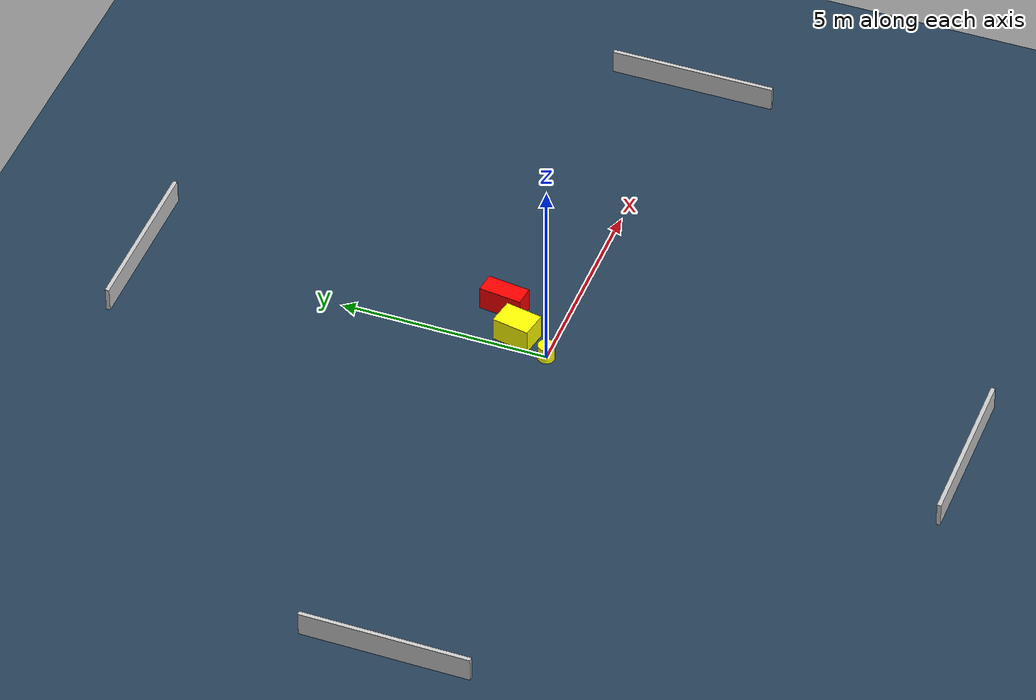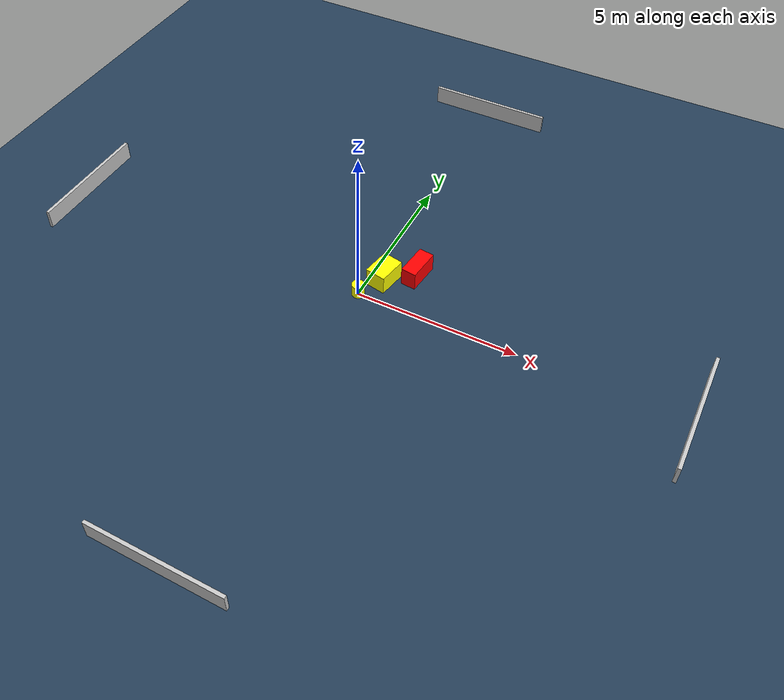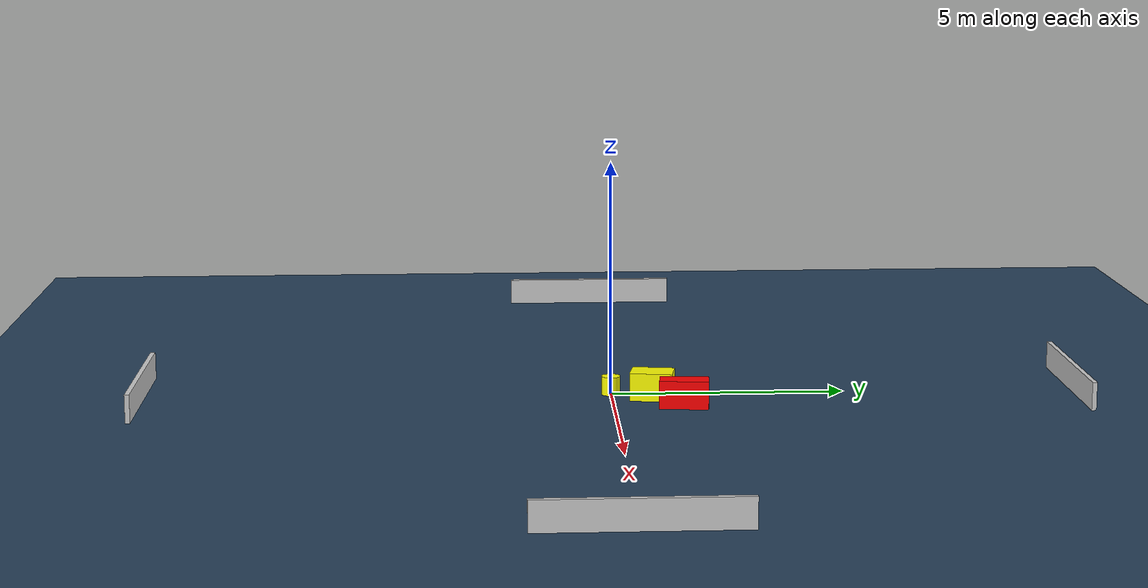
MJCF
<?xml version="1.0" ?>
<mujoco model="generated_environment">
  <option timestep="0.01" integrator="RK4" cone="elliptic"/>
  <default>
    <geom density="1"/>
  </default>
  <asset>
    <texture builtin="gradient" height="3072" name="skybox" rgb1="0.3 0.5 0.7" rgb2="0 0 0" type="skybox" width="512"/>
    <texture builtin="checker" height="300" name="groundplane" rgb1="0.2 0.3 0.4" rgb2="0.1 0.2 0.3" type="2d" width="300"/>
    <material name="groundplane" reflectance="0.2" texrepeat="5 5" texture="groundplane"/>
  </asset>
  <worldbody>
    <light dir="0 0 -1" directional="true" pos="0 0 1.5"/>
    <geom condim="3" friction="0.5 0.005 0.001" material="groundplane" name="floor" pos="0 0 0" size="0 0 0.05" type="plane"/>
    <body name="walls">
      <geom name="wall_1" condim="4" pos="-10.0 0.0 0.3" rgba="0.800000011920929 0.800000011920929 0.800000011920929 1.0" size="0.05 2.0 0.3" type="box"/>
      <geom name="wall_2" condim="4" pos="10.0 0.0 0.3" rgba="0.800000011920929 0.800000011920929 0.800000011920929 1.0" size="0.05 2.0 0.3" type="box"/>
      <geom name="wall_3" condim="4" pos="0.0 -10.0 0.3" rgba="0.800000011920929 0.800000011920929 0.800000011920929 1.0" size="2.0 0.05 0.3" type="box"/>
      <geom name="wall_4" condim="4" pos="0.0 10.0 0.3" rgba="0.800000011920929 0.800000011920929 0.800000011920929 1.0" size="2.0 0.05 0.3" type="box"/>
    </body>
    <body name="robot">
      <joint name="joint_x" type="slide" pos="0 0 0" axis="1 0 0"/>
      <joint name="joint_y" type="slide" pos="0 0 0" axis="0 1 0"/>
      <geom name="robot" type="cylinder" pos="0.0 0.0 0.2" size="0.2 0.2 0.0" mass="5.0" friction="1.0 0.005 0.0001" condim="4" rgba="1.0 1.0 0.0 1.0"/>
    </body>
    <body name="obstacle_1_movable">
      <geom name="obstacle_1_movable" condim="4" pos="0.4158245711203287 0.8617956778497762 0.3" euler="0 0 79.59808996050417" friction="0.0 0.005 0.001" rgba="1.0 1.0 0.0 1.0" size="0.4516211755460404 0.3219065974145536 0.3" type="box" mass="0.1"/>
      <joint type="free"/>
    </body>
    <body name="obstacle_2_static">
      <geom name="obstacle_2_static" condim="4" pos="1.2200468696316735 1.4785262100562957 0.3" euler="0 0 173.4557628682334" friction="0.0 0.005 0.001" rgba="1.0 0.0 0.0 1.0" size="0.23738740854380275 0.5178673772176846 0.3" type="box"/>
    </body>
  </worldbody>
  <actuator>
    <motor name="actuator_x" joint="joint_x" gear="1" ctrlrange="-1 1"/>
    <motor name="actuator_y" joint="joint_y" gear="1" ctrlrange="-1 1"/>
  </actuator>
</mujoco>
